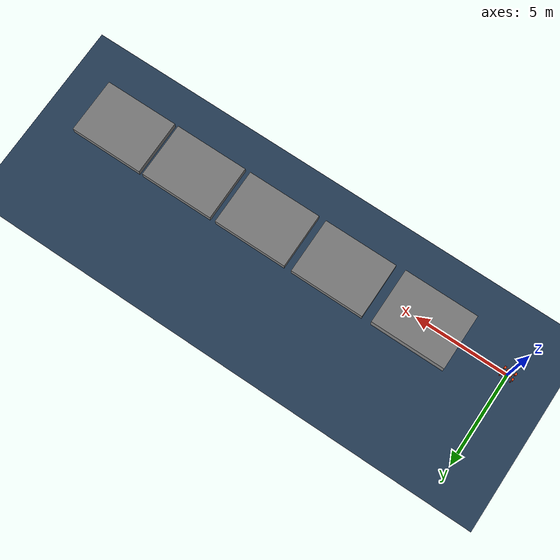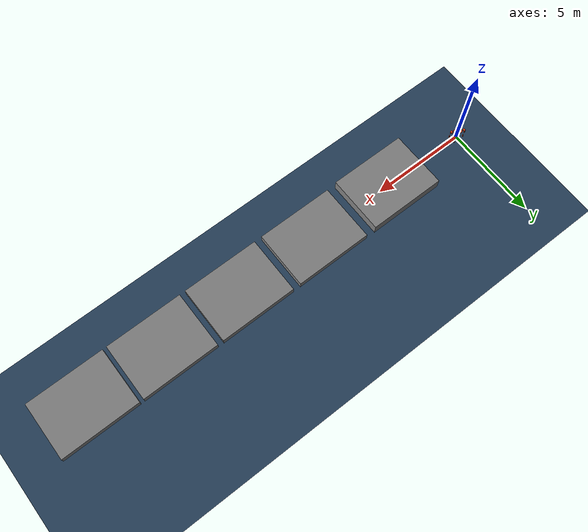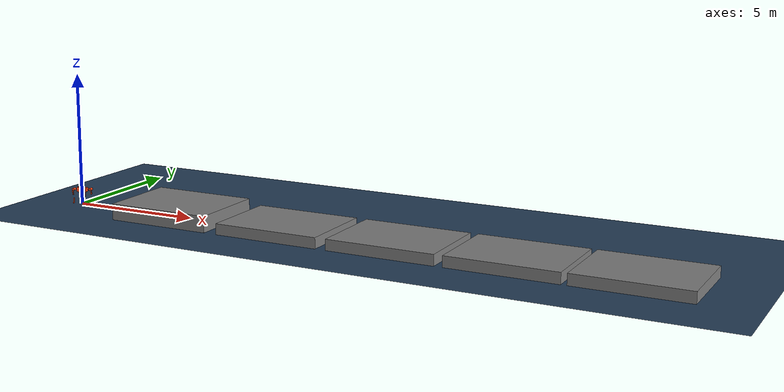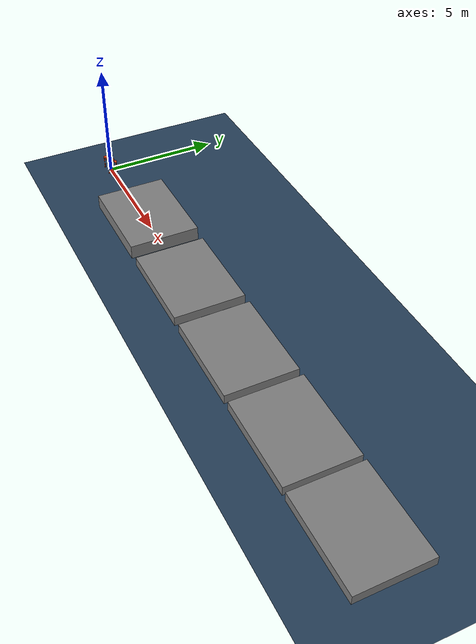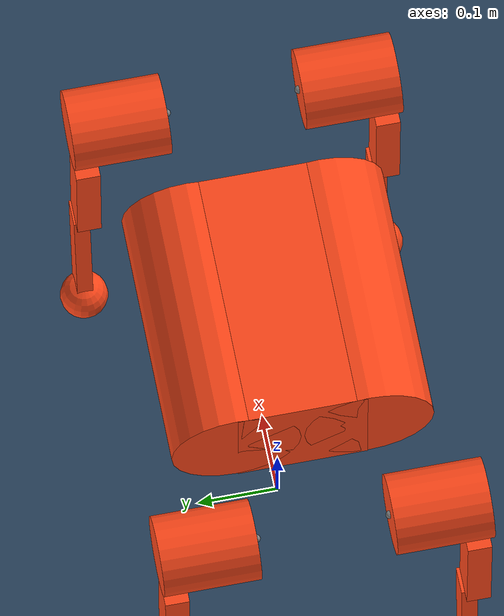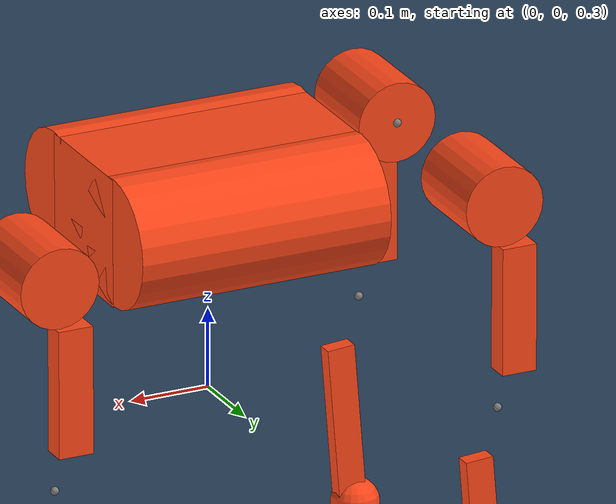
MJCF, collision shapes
<mujoco model="panda3 scene">
  <include file="panda3.xml"/>

  <statistic center="0 0 0.1" extent="0.8"/>

  <visual>
    <headlight diffuse="0.6 0.6 0.6" ambient="0.3 0.3 0.3" specular="0 0 0"/>
    <rgba haze="0.15 0.25 0.35 1"/>
    <global azimuth="-130" elevation="-20"/>
  </visual>

  <asset>
    <texture type="skybox" builtin="gradient"
             rgb1="0.3 0.5 0.7" rgb2="0 0 0"
             width="512" height="3072"/>

    <texture type="2d" name="groundplane"
             builtin="checker" mark="edge"
             rgb1="0.2 0.3 0.4" rgb2="0.1 0.2 0.3"
             markrgb="0.8 0.8 0.8"
             width="300" height="300"/>

    <material name="groundplane"
              texture="groundplane"
              texuniform="true"
              texrepeat="5 5"
              reflectance="0.2"/>
  </asset>

<worldbody>
    <light pos="0 0 1.5" dir="0 0 -1" directional="true"/>
    <geom name="floor" type="plane" size="0 0 0.05" material="groundplane" friction="1.2 0.02 0.002"/>

    <body pos="2.5 0 0">

        <geom pos="2.1 0 0.3" type="box" size="2 1.5 0.3"/>

        <geom pos="6.6 0 0.2" type="box" size="2 1.5 0.2"/>

        <geom pos="11.0 0 0.2" type="box" size="2 1.5 0.2"/>

        <geom pos="15.3 0 0.2" type="box" size="2 1.5 0.2"/>

        <geom pos="19.5 0 0.2" type="box" size="2 1.5 0.2"/>

    </body>
</worldbody>
</mujoco>

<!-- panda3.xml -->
<mujoco model="MCat">
  <default>
    <default class="robot">
    <joint damping="0.1" armature="0.01" frictionloss="0.2"/>

      <default class="abduction">
        <joint axis="1 0 0" range="-1.047 1.047"/>
        <motor ctrlrange="-60 60"/>
      </default>
      <default class="hip">
        <motor ctrlrange="-60 60"/>
        <default class="front_hip">
          <joint range="-1.571 3.75"/>
        </default>
        <default class="back_hip">
          <joint range="-1.571 3.75"/>
        </default>
      </default>
      <default class="knee">
        <joint range="-2.53 0.35"/>
        <motor ctrlrange="-90 90"/>
      </default>

      <default class="visual">
        <geom material="visualgeom" contype="0" conaffinity="0" group="2" />
      </default>
      <default class="collision">
        <geom material="collision_material" condim="3" contype="0" conaffinity="1" priority="1" group="1" solref="0.005 1" solimp="0.99 0.999 1e-05" friction="2 0.01 0.01" />
      </default>
    </default>
  </default>

  <compiler angle="radian" />

  <asset>
    <material name="blue" rgba="0.7 0.7 0.7 1" />
    <material name="default_material" rgba="0.7 0.7 0.7 1" />
    <material name="collision_material" rgba="1.0 0.28 0.1 0.9" />
    <mesh name="base.STL" file="base.stl" />
    <mesh name="FL_hip.STL" file="FL_hip.STL" />
    <mesh name="FL_thigh.STL" file="FL_thigh.STL" />
    <mesh name="FL_calf.STL" file="FL_calf.STL" />
    <mesh name="FL_foot.STL" file="FL_foot.STL" />
    <mesh name="FR_hip.STL" file="FR_hip.STL" />
    <mesh name="FR_thigh.STL" file="FR_thigh.STL" />
    <mesh name="FR_calf.STL" file="FR_calf.STL" />
    <mesh name="FR_foot.STL" file="FR_foot.STL" />
    <mesh name="RL_hip.STL" file="RL_hip.STL" />
    <mesh name="RL_thigh.STL" file="RL_thigh.STL" />
    <mesh name="RL_calf.STL" file="RL_calf.STL" />
    <mesh name="RL_foot.STL" file="RL_foot.STL" />
    <mesh name="RR_hip.STL" file="RR_hip.STL" />
    <mesh name="RR_thigh.STL" file="RR_thigh.STL" />
    <mesh name="RR_calf.STL" file="RR_calf.STL" />
    <mesh name="RR_foot.STL" file="RR_foot.STL" />
  </asset>

  <worldbody>
    <body name="base" pos="0.00000000 0.00000000 0.55351000" quat="1 0 0 0" childclass="robot">

      <camera name="depth_cam"
        fovy="58"
        pos="0.3195 0 0.1115"
        quat="0.541675220419702 -0.4545194776720437 -0.4545194776720436 0.5416752204197018"/>

      <inertial
        pos="0.00318608 0.00029494 -0.01284135"
        quat="1 0 0 0"
        mass="20.90069011"
        diaginertia="0.12311424 0.38550893 0.44680085"/>
      <site name="imu" pos="0 0 0" />
      <freejoint name="floating_base" />
      <geom name="base_collision_0" pos="0 0 -0.013" quat="1.0 0.0 0.0 0.0" type="box" size="0.16 0.08 0.08" class="collision" />
      <geom name="base_collision_1" pos="0 -0.082 -0.011" quat="0.7071067835889063 0.0 0.7071067787841887 0.0" type="cylinder" size="0.08 0.16" class="collision" />
      <geom name="base_collision_2" pos="0 0.082 -0.011" quat="0.7071067835889063 0.0 0.7071067787841887 0.0" type="cylinder" size="0.08 0.16" class="collision" />
      <geom name="base_visual" pos="0 0 0" quat="1.0 0.0 0.0 0.0" material="blue" type="mesh" mesh="base.STL" class="visual" />
      <body name="FL_hip" pos="0.286 0.082 -0.0" quat="1.0 0.0 0.0 0.0">
        <joint name="FL_hip_joint" type="hinge" ref="0.0" class="abduction" range="-0.8 0.8" axis="1 0 0" />
        <site name="FL_hip_joint_site" pos="0 0 0" quat="1 0 0 0" />
        <inertial pos="-0.00230043 -0.01037046 0.00016444" quat="1.0 0.0 0.0 0.0" mass="1.12888829" diaginertia="0.00101564 0.00159448 0.00123571" />
        <geom name="FL_hip_visual" pos="0 0 0" quat="1.0 0.0 0.0 0.0" material="blue" type="mesh" mesh="FL_hip.STL" class="visual" />
        <body name="FL_thigh" pos="0 0.1055 0" quat="1.0 0.0 0.0 0.0">
          <joint name="FL_thigh_joint" type="hinge" ref="0.0" class="front_hip" range="-1.62 3.735" axis="0 1 0" />
          <site name="FL_thigh_joint_site" pos="0 0 0" quat="1 0 0 0" />
          <inertial pos="-0.00302298 -0.03822477 -0.02112195" quat="1.0 0.0 0.0 0.0" mass="1.96466711" diaginertia="0.00912715 0.00870374 0.0027557" />
          <geom name="FL_thigh_collision_0" pos="0 -0.043 0" quat="0.7073882691671998 0.706825181105366 0.0 0.0" type="cylinder" size="0.05 0.06" class="collision" />
          <geom name="FL_thigh_collision_1" pos="-0.021 0 -0.135" quat="1.0 0.0 0.0 0.0" type="box" size="0.022 0.015 0.08" class="collision" />
          <geom name="FL_thigh_visual" pos="0 0 0" quat="1.0 0.0 0.0 0.0" material="blue" type="mesh" mesh="FL_thigh.STL" class="visual" />
          <body name="FL_calf" pos="0 0 -0.26" quat="1.0 0.0 0.0 0.0">
            <joint name="FL_calf_joint" type="hinge" ref="0.0" class="knee" range="-2.443 -0.524" axis="0 1 0" />
            <site name="FL_calf_joint_site" pos="0 0 0" quat="1 0 0 0" />
            <inertial pos="0.01449114 0.0 -0.12267318" quat="1.0 0.0 0.0 0.0" mass="0.22017362" diaginertia="0.00212347 0.00216129 5.417e-05" />
            <geom name="FL_calf_collision" pos="0.02 0 -0.158" quat="0.6785569656238399 0.0 0.7345477822465786 0.0" type="box" size="0.1 0.01 0.0175" class="collision" />
            <geom name="FL_calf_visual" pos="0 0 0" quat="1.0 0.0 0.0 0.0" material="blue" type="mesh" mesh="FL_calf.STL" class="visual" />
            <body name="FL_foot" pos="0 0 -0.26851" quat="1.0 0.0 0.0 0.0">
              <inertial pos="-0.00728207 0.0000000 -0.01210451" quat="1.0 0.0 0.0 0.0" mass="0.03331764" diaginertia="7.22e-06 1.096e-05 1.03e-05" />
              <geom name="FL_foot_collision" pos="0.005 0 0.005" quat="1.0 0.0 0.0 0.0" type="sphere" size="0.03" class="collision" />
              <geom name="FL_foot_visual" pos="0 0 0" quat="1.0 0.0 0.0 0.0" material="blue" type="mesh" mesh="FL_foot.STL" class="visual" />
            </body>
          </body>
        </body>
      </body>
      <body name="FR_hip" pos="0.286 -0.082 -0.0" quat="1.0 0.0 0.0 0.0">
        <joint name="FR_hip_joint" type="hinge" ref="0.0" class="abduction" range="-0.8 0.8" axis="1 0 0" />
        <site name="FR_hip_joint_site" pos="0 0 0" quat="1 0 0 0" />
        <inertial pos="-0.00230043 0.01037046 -0.0001644" quat="1.0 0.0 0.0 0.0" mass="1.12888829" diaginertia="0.00101564 0.00159448 0.00123571" />
        <geom name="FR_hip_visual" pos="0 0 0" quat="1.0 0.0 0.0 0.0" material="blue" type="mesh" mesh="FR_hip.STL" class="visual" />
        <body name="FR_thigh" pos="0 -0.1035 0" quat="1.0 0.0 0.0 0.0">
          <joint name="FR_thigh_joint" type="hinge" ref="0.0" class="front_hip" range="-1.62 3.73" axis="0 1 0" />
          <site name="FR_thigh_joint_site" pos="0 0 0" quat="1 0 0 0" />
          <inertial pos="-0.0030885 0.03622672 -0.02113314" quat="1.0 0.0 0.0 0.0" mass="1.96467358" diaginertia="0.00913837 0.00871947 0.00276069" />
          <geom name="FR_thigh_collision_0" pos="0 0.043 0" quat="0.7073882691671998 0.706825181105366 0.0 0.0" type="cylinder" size="0.05 0.06" class="collision" />
          <geom name="FR_thigh_collision_1" pos="-0.021 0 -0.135" quat="1.0 0.0 0.0 0.0" type="box" size="0.022 0.015 0.08" class="collision" />
          <geom name="FR_thigh_visual" pos="0 0 0" quat="1.0 0.0 0.0 0.0" material="blue" type="mesh" mesh="FR_thigh.STL" class="visual" />
          <body name="FR_calf" pos="0 0 -0.26" quat="1.0 0.0 0.0 0.0">
            <joint name="FR_calf_joint" type="hinge" ref="0.0" class="knee" range="-2.44 -0.52" axis="0 1 0" />
            <site name="FR_calf_joint_site" pos="0 0 0" quat="1 0 0 0" />
            <inertial pos="0.01449052 0.0 -0.12267287" quat="1.0 0.0 0.0 0.0" mass="0.22016958" diaginertia="0.00212347 0.00216129 5.416e-05" />
            <geom name="FR_calf_collision" pos="0.02 0 -0.158" quat="0.6785569656238399 0.0 0.7345477822465786 0.0" type="box" size="0.1 0.01 0.0175" class="collision" />
            <geom name="FR_calf_visual" pos="0 0 0" quat="1.0 0.0 0.0 0.0" material="blue" type="mesh" mesh="FR_calf.STL" class="visual" />
            <body name="FR_foot" pos="0 0 -0.26851" quat="1.0 0.0 0.0 0.0">
              <inertial pos="-0.00728207 0.0000000 -0.01210451" quat="1.0 0.0 0.0 0.0" mass="0.03331764" diaginertia="7.22e-06 1.096e-05 1.03e-05" />
              <geom name="FR_foot_collision" pos="0.005 0 0.005" quat="1.0 0.0 0.0 0.0" type="sphere" size="0.03" class="collision" />
              <geom name="FR_foot_visual" pos="0 0 0" quat="1.0 0.0 0.0 0.0" material="blue" type="mesh" mesh="FR_foot.STL" class="visual" />
            </body>
          </body>
        </body>
      </body>
      <body name="RL_hip" pos="-0.286 0.082 -0.0" quat="1.0 0.0 0.0 0.0">
        <joint name="RL_hip_joint" type="hinge" ref="0.0" class="abduction" range="-0.8 0.8" axis="1 0 0" />
        <site name="RL_hip_joint_site" pos="0 0 0" quat="1 0 0 0" />
        <inertial pos="0.00230043 -0.01037046 -0.00016444" quat="1.0 0.0 0.0 0.0" mass="1.12888829" diaginertia="0.00101564 0.00159448 0.00123571" />
        <geom name="RL_hip_visual" pos="0 0 0" quat="1.0 0.0 0.0 0.0" material="blue" type="mesh" mesh="RL_hip.STL" class="visual" />
        <body name="RL_thigh" pos="0 0.1055 0" quat="1.0 0.0 0.0 0.0">
          <joint name="RL_thigh_joint" type="hinge" ref="0.0" class="back_hip" range="-1.62 3.73" axis="0 1 0" />
          <site name="RL_thigh_joint_site" pos="0 0 0" quat="1 0 0 0" />
          <inertial pos="-0.00302298 -0.03822477 -0.02112195" quat="1.0 0.0 0.0 0.0" mass="1.96466711" diaginertia="0.00912715 0.00870374 0.0027557" />
          <geom name="RL_thigh_collision_0" pos="0 -0.043 0" quat="0.7073882691671998 0.706825181105366 0.0 0.0" type="cylinder" size="0.05 0.06" class="collision" />
          <geom name="RL_thigh_collision_1" pos="-0.021 0 -0.135" quat="1.0 0.0 0.0 0.0" type="box" size="0.022 0.015 0.08" class="collision" />
          <geom name="RL_thigh_visual" pos="0 0 0" quat="1.0 0.0 0.0 0.0" material="blue" type="mesh" mesh="RL_thigh.STL" class="visual" />
          <body name="RL_calf" pos="0 0 -0.26" quat="1.0 0.0 0.0 0.0">
            <joint name="RL_calf_joint" type="hinge" ref="0.0" class="knee" range="-2.44 -0.52" axis="0 1 0" />
            <site name="RL_calf_joint_site" pos="0 0 0" quat="1 0 0 0" />
            <inertial pos="0.01449114 0.0 -0.12267318" quat="1.0 0.0 0.0 0.0" mass="0.22017362" diaginertia="0.00212347 0.00216129 5.417e-05" />
            <geom name="RL_calf_collision" pos="0.02 0 -0.158" quat="0.6785569656238399 0.0 0.7345477822465786 0.0" type="box" size="0.1 0.01 0.0175" class="collision" />
            <geom name="RL_calf_visual" pos="0 0 0" quat="1.0 0.0 0.0 0.0" material="blue" type="mesh" mesh="RL_calf.STL" class="visual" />
            <body name="RL_foot" pos="0 0 -0.26851" quat="1.0 0.0 0.0 0.0">
              <inertial pos="-0.00728207 0.0000000 -0.01210451" quat="1.0 0.0 0.0 0.0" mass="0.03331764" diaginertia="7.2e-06 1.096e-05 1.031e-05" />
              <geom name="RL_foot_collision" pos="0.005 0 0.005" quat="1.0 0.0 0.0 0.0" type="sphere" size="0.03" class="collision" />
              <geom name="RL_foot_visual" pos="0 0 0" quat="1.0 0.0 0.0 0.0" material="blue" type="mesh" mesh="RL_foot.STL" class="visual" />
            </body>
          </body>
        </body>
      </body>
      <body name="RR_hip" pos="-0.286 -0.082 -0.0" quat="1.0 0.0 0.0 0.0">
        <joint name="RR_hip_joint" type="hinge" ref="0.0" class="abduction" range="-0.8 0.8" axis="1 0 0" />
        <site name="RR_hip_joint_site" pos="0 0 0" quat="1 0 0 0" />
        <inertial pos="0.00230043 0.01037046 0.0001644" quat="1.0 0.0 0.0 0.0" mass="1.12888829" diaginertia="0.00101564 0.00159448 0.00123571" />
        <geom name="RR_hip_visual" pos="0 0 0" quat="1.0 0.0 0.0 0.0" material="blue" type="mesh" mesh="RR_hip.STL" class="visual" />
        <body name="RR_thigh" pos="0 -0.1035 0" quat="1.0 0.0 0.0 0.0">
          <joint name="RR_thigh_joint" type="hinge" ref="0.0" class="back_hip" range="-1.62 3.73" axis="0 1 0" />
          <site name="RR_thigh_joint_site" pos="0 0 0" quat="1 0 0 0" />
          <inertial pos="-0.0030885 0.03622672 -0.02113314" quat="1.0 0.0 0.0 0.0" mass="1.96467358" diaginertia="0.00913837 0.00871947 0.00276069" />
          <geom name="RR_thigh_collision_0" pos="0 0.043 0" quat="0.7073882691671998 0.706825181105366 0.0 0.0" type="cylinder" size="0.05 0.06" class="collision" />
          <geom name="RR_thigh_collision_1" pos="-0.021 0 -0.135" quat="1.0 0.0 0.0 0.0" type="box" size="0.022 0.015 0.08" class="collision" />
          <geom name="RR_thigh_visual" pos="0 0 0" quat="1.0 0.0 0.0 0.0" material="blue" type="mesh" mesh="RR_thigh.STL" class="visual" />
          <body name="RR_calf" pos="0 0 -0.26" quat="1.0 0.0 0.0 0.0">
            <joint name="RR_calf_joint" type="hinge" ref="0.0" class="knee" range="-2.44 -0.52" axis="0 1 0" />
            <site name="RR_calf_joint_site" pos="0 0 0" quat="1 0 0 0" />
            <inertial pos="0.01449052 0.0 -0.12267287" quat="1.0 0.0 0.0 0.0" mass="0.22016958" diaginertia="0.00212347 0.00216129 5.416e-05" />
            <geom name="RR_calf_collision" pos="0.02 0 -0.158" quat="0.6785569656238399 0.0 0.7345477822465786 0.0" type="box" size="0.1 0.01 0.0175" class="collision" />
            <geom name="RR_calf_visual" pos="0 0 0" quat="1.0 0.0 0.0 0.0" material="blue" type="mesh" mesh="RR_calf.STL" class="visual" />
            <body name="RR_foot" pos="0 0 -0.26851" quat="1.0 0.0 0.0 0.0">
              <inertial pos="-0.00728207 0.0000000 -0.01210451" quat="1.0 0.0 0.0 0.0" mass="0.03331764" diaginertia="7.22e-06 1.096e-05 1.031e-05" />
              <geom name="RR_foot_collision" pos="0.005 0 0.005" quat="1.0 0.0 0.0 0.0" type="sphere" size="0.03" class="collision" />
              <geom name="RR_foot_visual" pos="0 0 0" quat="1.0 0.0 0.0 0.0" material="blue" type="mesh" mesh="RR_foot.STL" class="visual" />
            </body>
          </body>
        </body>
      </body>
      <site name="base_site" pos="0 0 0" quat="1 0 0 0" />
      <camera name="front_camera" mode="track" fovy="90.0" quat="4.329780281177467e-17 4.329780281177466e-17 0.7071067811865475 0.7071067811865476" pos="0.0 2.0 0.5" />
      <camera name="side_camera" mode="track" fovy="90.0" quat="-0.5 -0.4999999999999999 0.5 0.5000000000000001" pos="-2.0 0.0 0.5" />
    </body>
  </worldbody>

  <actuator>

    <motor class="abduction" name="FL_hip_joint_ctrl" joint="FL_hip_joint"  />
    <motor class="hip" name="FL_thigh_joint_ctrl" joint="FL_thigh_joint" />
    <motor class="knee" name="FL_calf_joint_ctrl" joint="FL_calf_joint" />

    <motor class="abduction" name="FR_hip_joint_ctrl" joint="FR_hip_joint" />
    <motor class="hip" name="FR_thigh_joint_ctrl" joint="FR_thigh_joint" />
    <motor class="knee" name="FR_calf_joint_ctrl" joint="FR_calf_joint" />

    <motor class="abduction" name="RL_hip_joint_ctrl" joint="RL_hip_joint" />
    <motor class="hip" name="RL_thigh_joint_ctrl" joint="RL_thigh_joint" />
    <motor class="knee" name="RL_calf_joint_ctrl" joint="RL_calf_joint" />

    <motor class="abduction" name="RR_hip_joint_ctrl" joint="RR_hip_joint" />
    <motor class="hip" name="RR_thigh_joint_ctrl" joint="RR_thigh_joint" />
    <motor class="knee" name="RR_calf_joint_ctrl" joint="RR_calf_joint" />
  </actuator>

<sensor>

    <jointpos name="FL_hip_pos" joint="FL_hip_joint" />
    <jointpos name="FL_thigh_pos" joint="FL_thigh_joint" />
    <jointpos name="FL_calf_pos" joint="FL_calf_joint" />

    <jointpos name="FR_hip_pos" joint="FR_hip_joint" />
    <jointpos name="FR_thigh_pos" joint="FR_thigh_joint" />
    <jointpos name="FR_calf_pos" joint="FR_calf_joint" />

    <jointpos name="RL_hip_pos" joint="RL_hip_joint" />
    <jointpos name="RL_thigh_pos" joint="RL_thigh_joint" />
    <jointpos name="RL_calf_pos" joint="RL_calf_joint" />

    <jointpos name="RR_hip_pos" joint="RR_hip_joint" />
    <jointpos name="RR_thigh_pos" joint="RR_thigh_joint" />
    <jointpos name="RR_calf_pos" joint="RR_calf_joint" />

    <jointvel name="FL_hip_vel" joint="FL_hip_joint" />
    <jointvel name="FL_thigh_vel" joint="FL_thigh_joint" />
    <jointvel name="FL_calf_vel" joint="FL_calf_joint" />

    <jointvel name="FR_hip_vel" joint="FR_hip_joint" />
    <jointvel name="FR_thigh_vel" joint="FR_thigh_joint" />
    <jointvel name="FR_calf_vel" joint="FR_calf_joint" />

    <jointvel name="RL_hip_vel" joint="RL_hip_joint" />
    <jointvel name="RL_thigh_vel" joint="RL_thigh_joint" />
    <jointvel name="RL_calf_vel" joint="RL_calf_joint" />

    <jointvel name="RR_hip_vel" joint="RR_hip_joint" />
    <jointvel name="RR_thigh_vel" joint="RR_thigh_joint" />
    <jointvel name="RR_calf_vel" joint="RR_calf_joint" />

    <jointactuatorfrc name="FL_hip_torque" joint="FL_hip_joint" />
    <jointactuatorfrc name="FL_thigh_torque" joint="FL_thigh_joint" />
    <jointactuatorfrc name="FL_calf_torque" joint="FL_calf_joint" />

    <jointactuatorfrc name="FR_hip_torque" joint="FR_hip_joint" />
    <jointactuatorfrc name="FR_thigh_torque" joint="FR_thigh_joint" />
    <jointactuatorfrc name="FR_calf_torque" joint="FR_calf_joint" />

    <jointactuatorfrc name="RL_hip_torque" joint="RL_hip_joint"  />
    <jointactuatorfrc name="RL_thigh_torque" joint="RL_thigh_joint"  />
    <jointactuatorfrc name="RL_calf_torque" joint="RL_calf_joint"  />

    <jointactuatorfrc name="RR_hip_torque" joint="RR_hip_joint" />
    <jointactuatorfrc name="RR_thigh_torque" joint="RR_thigh_joint" />
    <jointactuatorfrc name="RR_calf_torque" joint="RR_calf_joint" />

    <framequat name="imu_quat" objtype="site" objname="imu" />
    <gyro name="imu_gyro" site="imu" />
    <accelerometer name="imu_acc" site="imu" />

    <framepos name="frame_pos" objtype="site" objname="imu" />
    <framelinvel name="frame_vel" objtype="site" objname="imu" />

  </sensor>

</mujoco>
